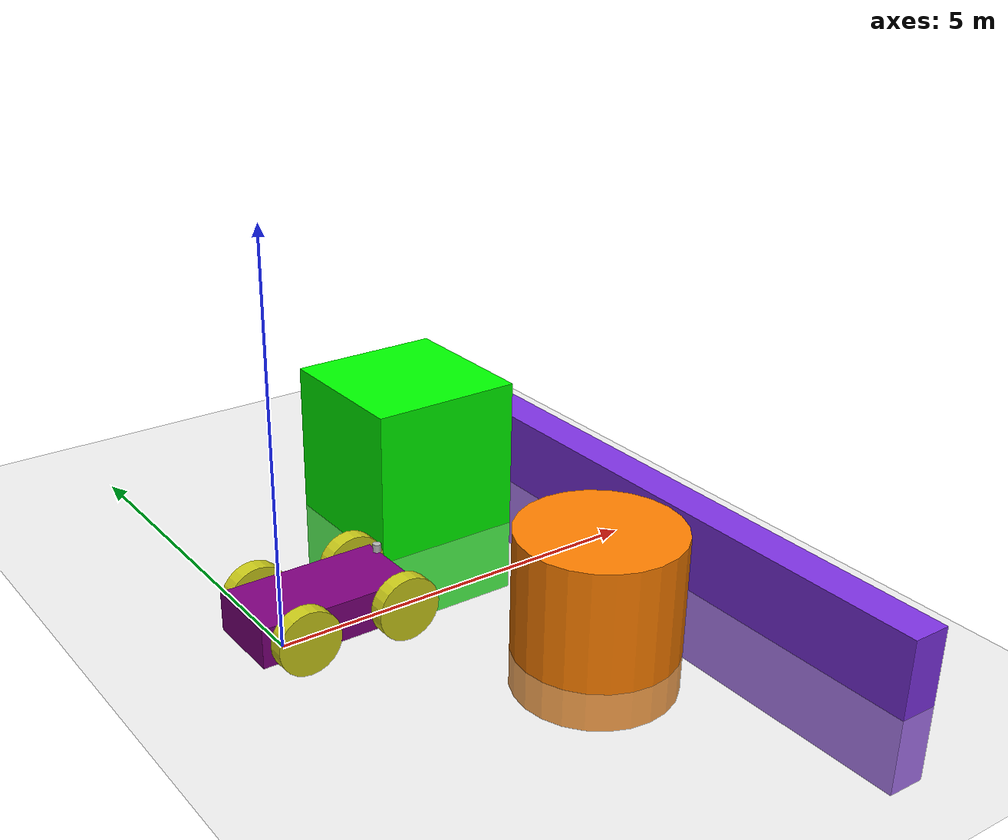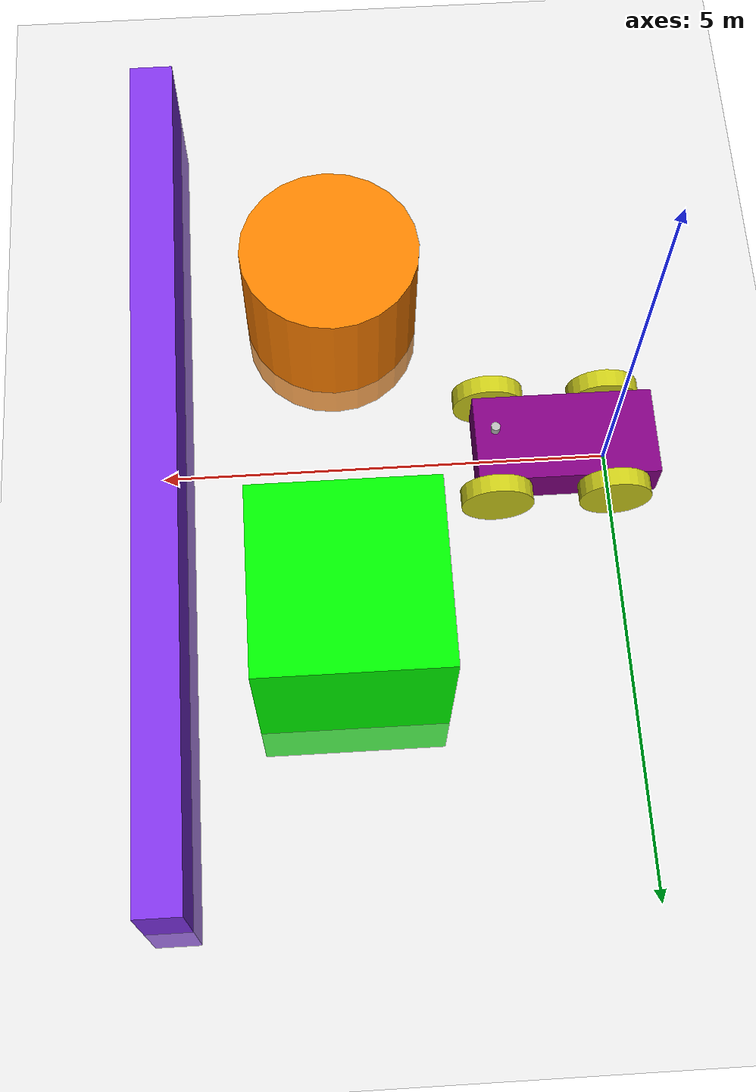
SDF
<?xml version="1.0" ?>
<sdf version="1.10">
    <world name="car_world">
    <plugin
        filename="gz-sim-physics-system"
        name="gz::sim::systems::Physics">
    </plugin>
    <plugin filename="gz-sim-sensors-system" name="gz::sim::systems::Sensors">
        <render_engine>ogre</render_engine>
    </plugin>
    <plugin
        filename="gz-sim-scene-broadcaster-system"
        name="gz::sim::systems::SceneBroadcaster">
    </plugin>
        <physics name="1ms" type="ignored">
            <max_step_size>0.001</max_step_size>
            <real_time_factor>1.0</real_time_factor>
        </physics>
        <plugin
            filename="gz-sim-user-commands-system"
            name="gz::sim::systems::UserCommands">
        </plugin>
        <plugin filename="gz-sim-contact-system"
        name="gz::sim::systems::Contact">
        </plugin>
        <light type="directional" name="sun">
            <cast_shadows>true</cast_shadows>
            <pose>0 0 10 0 0 0</pose>
            <diffuse>0.8 0.8 0.8 1</diffuse>
            <specular>0.2 0.2 0.2 1</specular>
            <attenuation>
                <range>1000</range>
                <constant>0.9</constant>
                <linear>0.01</linear>
                <quadratic>0.001</quadratic>
            </attenuation>
            <direction>-0.5 0.1 -0.9</direction>
        </light>

        <model name="ground_plane">
            <static>true</static>
            <link name="link">
                <collision name="collision">
                <geometry>
                    <plane>
                    <normal>0 0 1</normal>
                    </plane>
                </geometry>
                </collision>
                <visual name="visual">
                <geometry>
                    <plane>
                    <normal>0 0 1</normal>
                    <size>100 100</size>
                    </plane>
                </geometry>
                <material>
                    <ambient>0.8 0.8 0.8 1</ambient>
                    <diffuse>0.8 0.8 0.8 1</diffuse>
                    <specular>0.8 0.8 0.8 1</specular>
                </material>
                </visual>
            </link>
        </model>
        <model name='box_obstacle'>
            <pose>3 2 0.5 0 0 0</pose>
            <link name='link'>
                <visual name='visual'>
                    <geometry><box><size>2 2 3</size></box></geometry>
                    <material><ambient>0 1 0 1</ambient><diffuse>0 1 0 1</diffuse></material>
                </visual>
                <collision name='collision'>
                    <geometry><box><size>1 1 1</size></box></geometry>
                </collision>
            </link>
        </model>

        <model name='cylinder_obstacle'>
            <pose>3 -2 0.5 0 0 0</pose>
            <link name='link'>
                <visual name='visual'>
                    <geometry><cylinder><radius>1</radius><length>2.0</length></cylinder></geometry>
                    <material><ambient>1 0.5 0 1</ambient><diffuse>1 0.5 0 1</diffuse></material>
                </visual>
                <collision name='collision'>
                    <geometry><cylinder><radius>0.5</radius><length>1.0</length></cylinder></geometry>
                </collision>
            </link>
        </model>

        <model name='vehicle_purple' canonical_link='chassis'>
            <pose relative_to='world'>0 0 0 0 0 0</pose>
            <link name='chassis'>
                <pose relative_to='__model__'>0.5 0 0.4 0 0 0</pose>
                    <inertial> <!--inertial properties of the link mass, inertia matix-->
        <mass>1.14395</mass>
        <inertia>
            <ixx>0.095329</ixx>
            <ixy>0</ixy>
            <ixz>0</ixz>
            <iyy>0.381317</iyy>
            <iyz>0</iyz>
            <izz>0.476646</izz>
        </inertia>
    </inertial>
        <visual name='visual'>
        <geometry>
            <box>
                <size>2.0 1.0 0.5</size>
            </box>
        </geometry>
        <!--let's add color to our link-->
        <material>
            <ambient>0.5 0.0 0.5 1</ambient>
            <diffuse>0.5 0.0 0.5 1</diffuse>
            <specular>0.8 0.0 0.8 1</specular>
        </material>
    </visual>
            <collision name='collision'>
            <geometry>
                <box>
                    <size>2.0 1.0 0.5</size>
                </box>
            </geometry>
        </collision>
        <sensor name='lidar' type='lidar'>
                    <pose>0.8 0 0.3 0 0 0</pose>
                    <topic>lidar</topic>
                    <update_rate>10</update_rate>
                    <ray>
                        <scan>
                            <horizontal>
                                <samples>640</samples>
                                <resolution>1</resolution>
                                <min_angle>-1.396263</min_angle>
                                <max_angle>1.396263</max_angle>
                            </horizontal>
                        </scan>
                        <range>
                            <min>0.08</min>
                            <max>10.0</max>
                            <resolution>0.01</resolution>
                        </range>
                    </ray>
                    <always_on>1</always_on>
                    <visualize>true</visualize>
                </sensor>
    </link>
    <link name='left_rear_wheel'>
    <pose relative_to="chassis">-0.5 0.6 0 -1.5707 0 0</pose>
    <inertial>
        <mass>1</mass>
        <inertia>
            <ixx>0.043333</ixx>
            <ixy>0</ixy>
            <ixz>0</ixz>
            <iyy>0.043333</iyy>
            <iyz>0</iyz>
            <izz>0.08</izz>
        </inertia>
    </inertial>
        <visual name='visual'>
        <geometry>
            <cylinder>
                <radius>0.4</radius>
                <length>0.2</length>
            </cylinder>
        </geometry>
        <material>
            <ambient>0.8 0.8 0.1 1</ambient>
            <diffuse>0.8 0.8 0.1 1</diffuse>
            <specular>1.0 1.0 0.2 1</specular>
        </material>
    </visual>
    <collision name='collision'>
        <geometry>
            <cylinder>
                <radius>0.4</radius>
                <length>0.2</length>
            </cylinder>
        </geometry>
    </collision>
</link>
<!--The same as left wheel but with different position-->
<link name='right_rear_wheel'>
    <pose relative_to="chassis">-0.5 -0.6 0 -1.5707 0 0</pose> <!--angles are in radian-->
    <inertial>
        <mass>1</mass>
        <inertia>
            <ixx>0.043333</ixx>
            <ixy>0</ixy>
            <ixz>0</ixz>
            <iyy>0.043333</iyy>
            <iyz>0</iyz>
            <izz>0.08</izz>
        </inertia>
    </inertial>
    <visual name='visual'>
        <geometry>
            <cylinder>
                <radius>0.4</radius>
                <length>0.2</length>
            </cylinder>
        </geometry>
        <material>
            <ambient>0.8 0.8 0.1 1</ambient>
            <diffuse>0.8 0.8 0.1 1</diffuse>
            <specular>1.0 1.0 0.2 1</specular>
        </material>
    </visual>
    <collision name='collision'>
        <geometry>
            <cylinder>
                <radius>0.4</radius>
                <length>0.2</length>
            </cylinder>
        </geometry>
    </collision>
</link>
<link name='left_front_wheel'>
    <pose relative_to="chassis">0.8 0.6 0 -1.5707 0 0</pose> <!--angles are in radian-->
    <inertial>
        <mass>1</mass>
        <inertia>
            <ixx>0.043333</ixx>
            <ixy>0</ixy>
            <ixz>0</ixz>
            <iyy>0.043333</iyy>
            <iyz>0</iyz>
            <izz>0.08</izz>
        </inertia>
    </inertial>
    <visual name='visual'>
        <geometry>
            <cylinder>
                <radius>0.4</radius>
                <length>0.2</length>
            </cylinder>
        </geometry>
        <material>
            <ambient>0.8 0.8 0.1 1</ambient>
            <diffuse>0.8 0.8 0.1 1</diffuse>
            <specular>1.0 1.0 0.2 1</specular>
        </material>
    </visual>
    <collision name='collision'>
        <geometry>
            <cylinder>
                <radius>0.4</radius>
                <length>0.2</length>
            </cylinder>
        </geometry>
    </collision>
</link>
<link name='right_front_wheel'>
    <pose relative_to="chassis">0.8  -0.6 0 -1.5707 0 0</pose> <!--angles are in radian-->
    <inertial>
        <mass>1</mass>
        <inertia>
            <ixx>0.043333</ixx>
            <ixy>0</ixy>
            <ixz>0</ixz>
            <iyy>0.043333</iyy>
            <iyz>0</iyz>
            <izz>0.08</izz>
        </inertia>
    </inertial>
    <visual name='visual'>
        <geometry>
            <cylinder>
                <radius>0.4</radius>
                <length>0.2</length>
            </cylinder>
        </geometry>
        <material>
            <ambient>0.8 0.8 0.1 1</ambient>
            <diffuse>0.8 0.8 0.1 1</diffuse>
            <specular>1.0 1.0 0.2 1</specular>
        </material>
    </visual>
    <collision name='collision'>
        <geometry>
            <cylinder>
                <radius>0.4</radius>
                <length>0.2</length>
            </cylinder>
        </geometry>
    </collision>
</link>
<joint name='right_front_wheel_joint' type='revolute'>
    <pose relative_to='right_front_wheel'/>
    <parent>chassis</parent>
    <child>right_front_wheel</child>
    <axis>
        <xyz expressed_in='__model__'>0 1 0</xyz>
        <limit>
            <lower>-1.79769e+308</lower>    <!--negative infinity-->
            <upper>1.79769e+308</upper>     <!--positive infinity-->
        </limit>
    </axis>
</joint>
<joint name='left_front_wheel_joint' type='revolute'>
    <pose relative_to='left_front_wheel'/>
    <parent>chassis</parent>
    <child>left_front_wheel</child>
    <axis>
        <xyz expressed_in='__model__'>0 1 0</xyz>
        <limit>
            <lower>-1.79769e+308</lower>    <!--negative infinity-->
            <upper>1.79769e+308</upper>     <!--positive infinity-->
        </limit>
    </axis>
</joint>
<joint name='left_rear_wheel_joint' type='revolute'>
    <pose relative_to='left_rear_wheel'/>
    <parent>chassis</parent>
    <child>left_rear_wheel</child>
    <axis>
        <xyz expressed_in='__model__'>0 1 0</xyz>
        <limit>
            <lower>-1.79769e+308</lower>    <!--negative infinity-->
            <upper>1.79769e+308</upper>     <!--positive infinity-->
        </limit>
    </axis>
</joint>
<joint name='right_rear_wheel_joint' type='revolute'>
    <pose relative_to='left_rear_wheel'/>
    <parent>chassis</parent>
    <child>right_rear_wheel</child>
    <axis>
        <xyz expressed_in='__model__'>0 1 0</xyz>
        <limit>
            <lower>-1.79769e+308</lower>    <!--negative infinity-->
            <upper>1.79769e+308</upper>     <!--positive infinity-->
        </limit>
    </axis>
</joint>

<plugin
    filename="gz-sim-diff-drive-system"
    name="gz::sim::systems::DiffDrive">
    <left_joint>left_rear_wheel_joint</left_joint>
    <left_joint>left_front_wheel_joint</left_joint>
    <right_joint>right_rear_wheel_joint</right_joint>
    <right_joint>right_front_wheel_joint</right_joint>
    <wheel_separation>1.2</wheel_separation>
    <wheel_radius>0.4</wheel_radius>
    <odom_publish_frequency>1</odom_publish_frequency>
    <topic>cmd_vel</topic>
</plugin>

<link name='lidar_link'>
    <pose relative_to='chassis'>0.8 0 0.5 0 0 0</pose>
    <inertial>
        <mass>0.1</mass>
        <inertia>
            <ixx>0.000166667</ixx>
            <iyy>0.000166667</iyy>
            <izz>0.000166667</izz>
        </inertia>
    </inertial>
    <visual name='visual'>
        <geometry>
            <cylinder>
                <radius>0.05</radius>
                <length>0.1</length>
            </cylinder>
        </geometry>
    </visual>
    <sensor name='gpu_lidar' type='gpu_lidar'>
        <topic>lidar</topic>
        <update_rate>10</update_rate>
        <lidar>
            <scan>
                <horizontal>
                    <samples>640</samples>
                    <resolution>1</resolution>
                    <min_angle>-1.396263</min_angle>
                    <max_angle>1.396263</max_angle>
                </horizontal>
            </scan>
            <range>
                <min>0.08</min>
                <max>10.0</max>
            </range>
        </lidar>
        <visualize>true</visualize>
    </sensor>
</link>

<joint name='lidar_joint' type='fixed'>
    <parent>chassis</parent>
    <child>lidar_link</child>
</joint>

<frame name="lidar_frame" attached_to='chassis'>
    <pose>0.8 0 0.5 0 0 0</pose>
</frame>

</model>

<model name='wall'>
    <static>true</static>
    <pose>5 0 0 0 0 0</pose><!--pose relative to the world-->
    <link name='box'>
    <sensor name='sensor_contact' type='contact'>
    <contact>
        <collision>collision</collision>
    </contact>
    </sensor>
        <visual name='visual'>
            <geometry>
                <box>
                    <size>0.5 10.0 2.0</size>
                </box>
            </geometry>
            <!--let's add color to our link-->
            <material>
                <ambient>0.5 0.2 0.9 1</ambient>
                <diffuse>0.5 0.2 0.9 1</diffuse>
                <specular>0.7 0.4 1.0 1</specular>
            </material>
        </visual>
        <collision name='collision'>
            <geometry>
                <box>
                    <size>0.5 10.0 2.0</size>
                </box>
            </geometry>
        </collision>
    </link>
    <plugin filename="gz-sim-touchplugin-system"
        name="gz::sim::systems::TouchPlugin">
    <target>vehicle_purple</target>
    <namespace>wall</namespace>
    <time>0.001</time>
    <enabled>true</enabled>
</plugin>
</model>
    </world>
</sdf>
